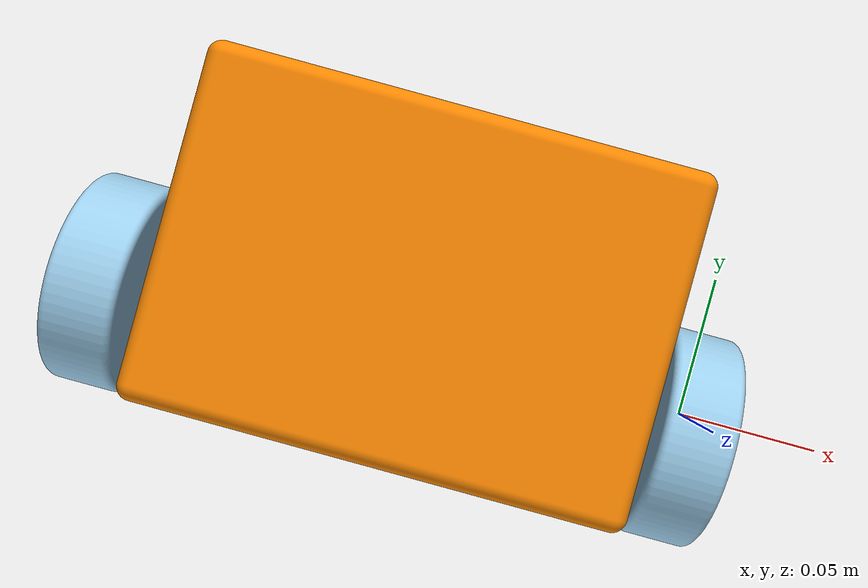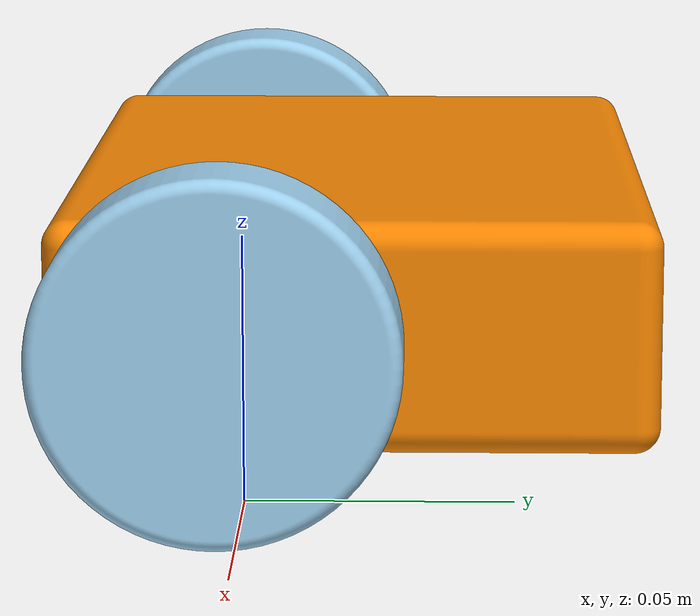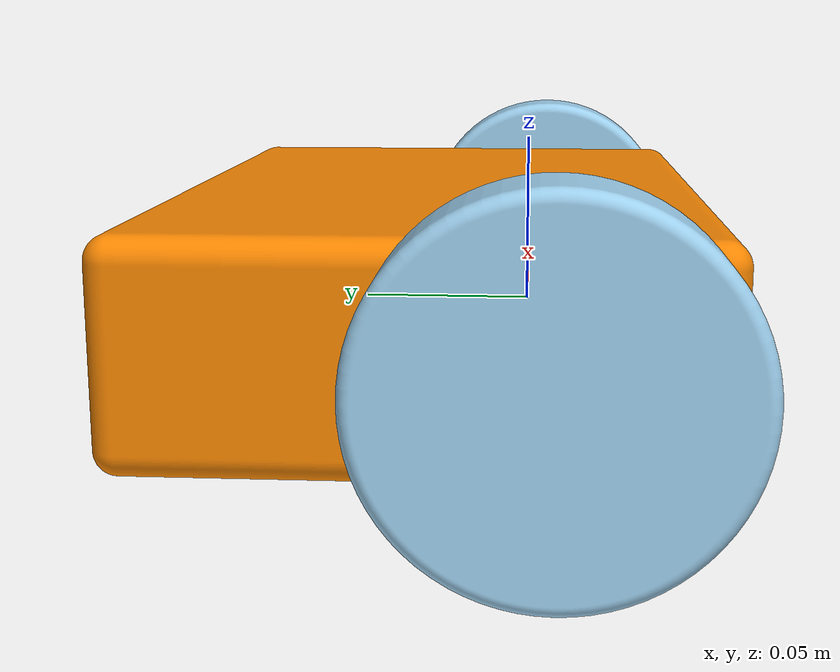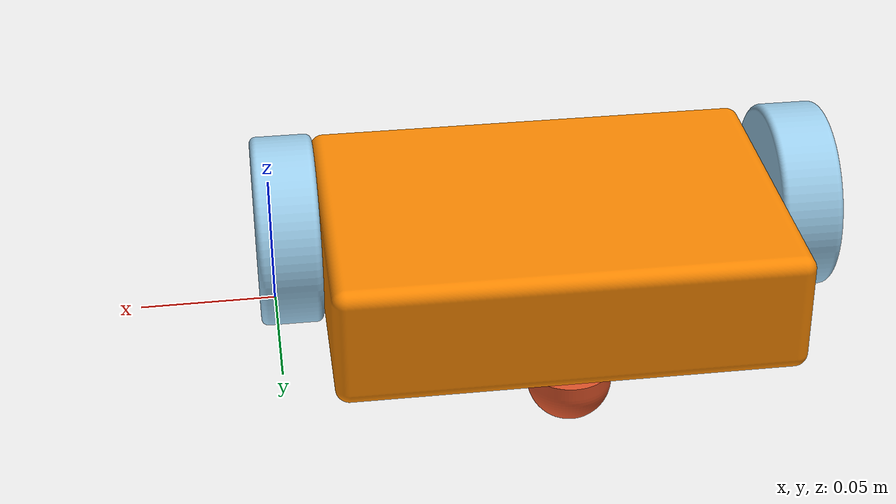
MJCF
<?xml version="1.0" ?>
<!-- Generated using onshape-to-robot -->
<!-- Onshape https://cad.onshape.com/documents/6139d43a54a64ec07762e076/w/6cc08108d560ea539e807943/e/832e5f3e45d53e6c934b467c -->
<mujoco model="C:\Users\Dhairya\Desktop\Local\Mujoco-Tutorials\Diff-Drive\my-robot">
  <compiler angle="radian" meshdir="assets" autolimits="true"/>
  <default>
    <default class="C:\Users\Dhairya\Desktop\Local\Mujoco-Tutorials\Diff-Drive\my-robot">
      <joint frictionloss="0.1" armature="0.005"/>
      <position kp="50" dampratio="1"/>
      <default class="visual">
        <geom type="mesh" contype="0" conaffinity="0" group="2"/>
      </default>
      <default class="collision">
        <geom group="3"/>
      </default>
    </default>
  </default>
  <worldbody>
    <!-- Link base_link -->
    <body name="base_link" pos="0 0 0" quat="1 0 0 0" childclass="C:\Users\Dhairya\Desktop\Local\Mujoco-Tutorials\Diff-Drive\my-robot">
      <freejoint name="base_link_freejoint"/>
      <inertial pos="-0.100694 0.019483 0.0261965" mass="1.02327" fullinertia="0.00134685 0.00253156 0.00353706 -2.30927e-19 7.74327e-20 -2.93334e-19"/>
      <!-- Part base_link -->
      <geom type="mesh" class="visual" pos="-0.100694 0.019483 0.00369646" quat="1 0 0 0" mesh="base_link" material="base_link_material"/>
      <geom type="mesh" class="collision" pos="-0.100694 0.019483 0.00369646" quat="1 0 0 0" mesh="base_link" material="base_link_material"/>
      <!-- Link right_wheel_link -->
      <body name="right_wheel_link" pos="-0.0171939 -0.00551701 0.0261965" quat="0.707107 -3.4953e-09 -0.707107 3.4953e-09">
        <!-- Joint from base_link to right_wheel_link -->
        <joint axis="0 0 1" name="right_wheel"/>
        <inertial pos="1.02484e-35 -1.99922e-18 -0.0115" mass="0.0925064" fullinertia="3.21864e-05 3.21864e-05 5.63094e-05 3.53274e-29 2.82403e-37 4.65762e-38"/>
        <!-- Part right_wheel_link -->
        <geom type="mesh" class="visual" pos="0 8.67362e-19 0" quat="0.707107 0.707107 -0 -1.62993e-25" mesh="right_wheel_link" material="right_wheel_link_material"/>
        <geom type="mesh" class="collision" pos="0 8.67362e-19 0" quat="0.707107 0.707107 -0 -1.62993e-25" mesh="right_wheel_link" material="right_wheel_link_material"/>
      </body>
      <!-- Link left_wheel_link -->
      <body name="left_wheel_link" pos="-0.209194 -0.00551701 0.0261965" quat="0.707107 -9.96252e-15 -0.707107 9.94213e-15">
        <!-- Joint from base_link to left_wheel_link -->
        <joint axis="0 0 1" name="left_wheel"/>
        <inertial pos="0 -1.13186e-18 -0.0115" mass="0.0925064" fullinertia="3.21864e-05 3.21864e-05 5.63094e-05 0 0 9.91523e-38"/>
        <!-- Part left_wheel_link -->
        <geom type="mesh" class="visual" pos="0 1.73472e-18 0" quat="0.707107 0.707107 -0 -0" mesh="left_wheel_link" material="left_wheel_link_material"/>
        <geom type="mesh" class="collision" pos="0 1.73472e-18 0" quat="0.707107 0.707107 -0 -0" mesh="left_wheel_link" material="left_wheel_link_material"/>
      </body>
      <!-- Link caster_wheel_link -->
      <body name="caster_wheel_link" pos="-0.100694 0.063483 0.00369646" quat="1 -3.5646e-18 3.33067e-16 -3.747e-16">
        <!-- Joint from base_link to caster_wheel_link -->
        <!-- Joint is "fixed", skipping it -->
        <inertial pos="2.59775e-51 -8.18803e-19 -0.00791667" mass="0.0111542" fullinertia="8.14491e-07 8.14491e-07 1.08754e-06 5.843e-40 -1.07256e-39 -7.33066e-40"/>
        <!-- Part caster_wheel_link -->
        <geom type="mesh" class="visual" pos="0 0 0" quat="0.707107 0.707107 -0 -4.65575e-34" mesh="caster_wheel_link" material="caster_wheel_link_material"/>
        <geom type="mesh" class="collision" pos="0 0 0" quat="0.707107 0.707107 -0 -4.65575e-34" mesh="caster_wheel_link" material="caster_wheel_link_material"/>
      </body>
    </body>
  </worldbody>
  <asset>
    <mesh file="base_link.stl"/>
    <mesh file="caster_wheel_link.stl"/>
    <mesh file="left_wheel_link.stl"/>
    <mesh file="right_wheel_link.stl"/>
    <material name="base_link_material" rgba="0.972549 0.529412 0.00392157 1"/>
    <material name="right_wheel_link_material" rgba="0.615686 0.811765 0.929412 1"/>
    <material name="left_wheel_link_material" rgba="0.615686 0.811765 0.929412 1"/>
    <material name="caster_wheel_link_material" rgba="0.866667 0.321569 0.156863 1"/>
  </asset>
  <actuator>
    <position class="C:\Users\Dhairya\Desktop\Local\Mujoco-Tutorials\Diff-Drive\my-robot" name="right_wheel" joint="right_wheel"/>
    <position class="C:\Users\Dhairya\Desktop\Local\Mujoco-Tutorials\Diff-Drive\my-robot" name="left_wheel" joint="left_wheel"/>
  </actuator>
  <equality/>
</mujoco>
